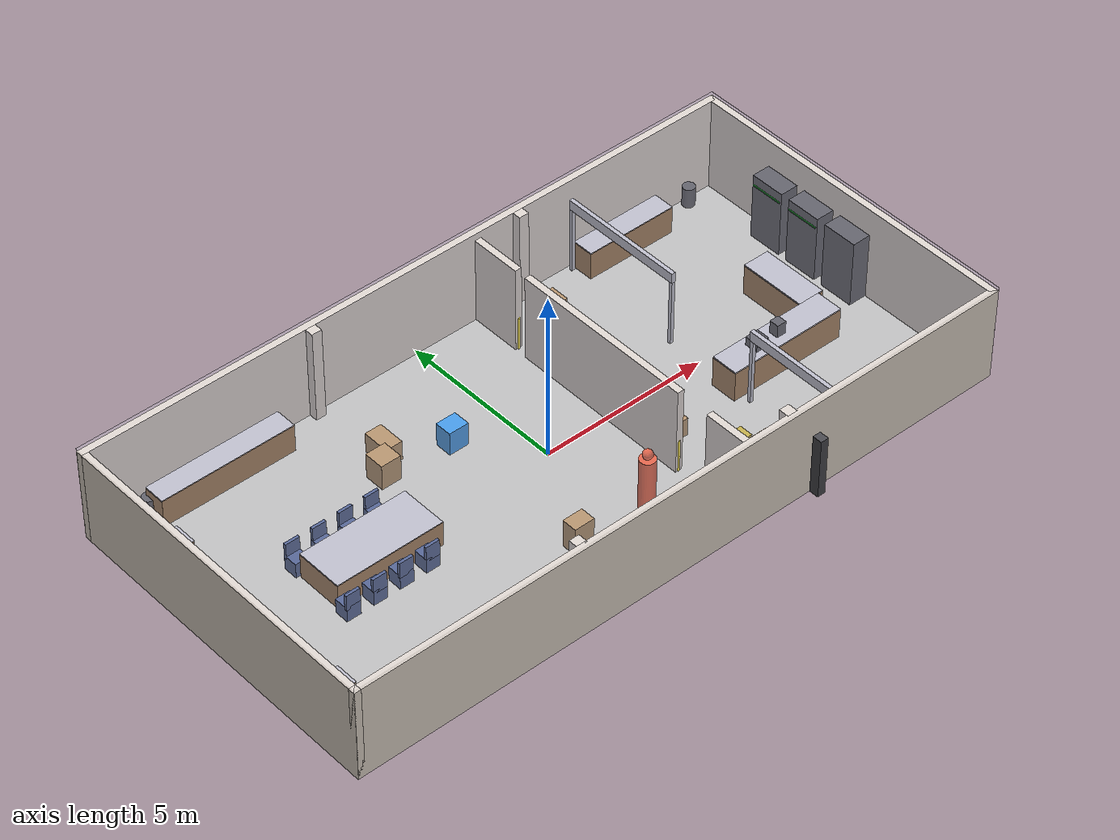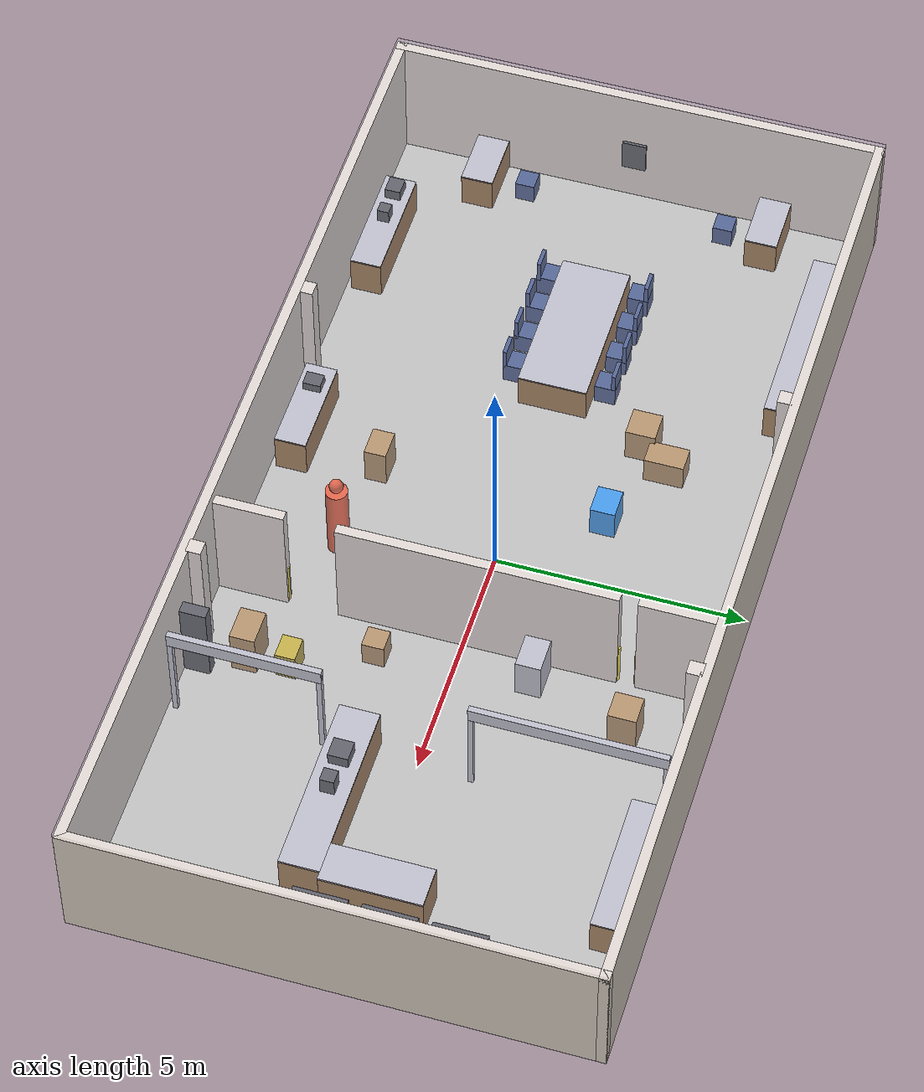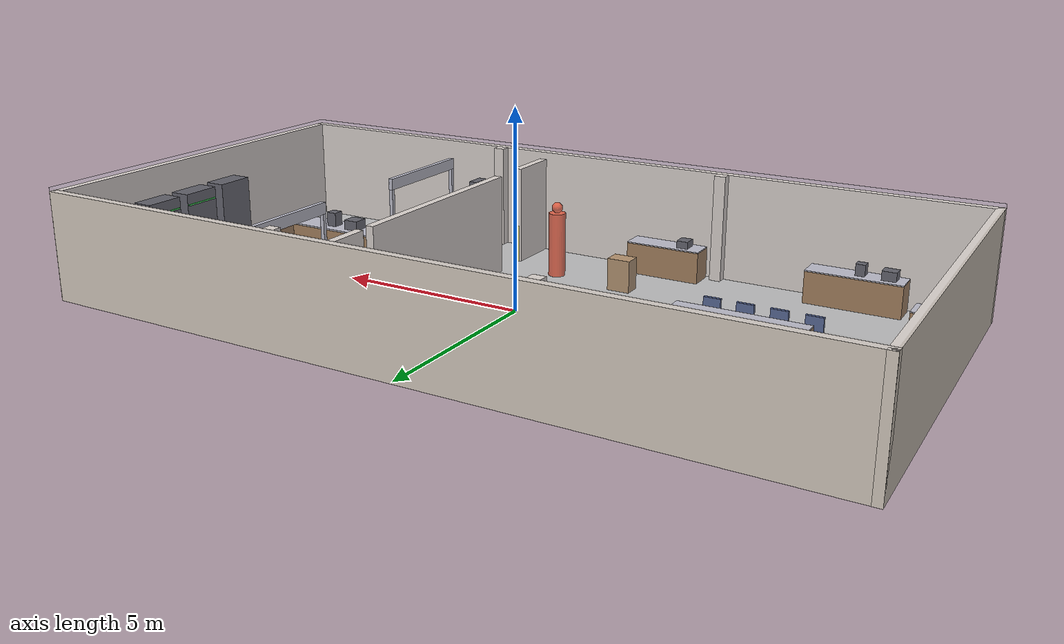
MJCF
<mujoco model="lab_env">

  <statistic center="0 0 1.2" extent="14"/>

  <visual>
    <headlight diffuse="0.7 0.7 0.7" ambient="0.35 0.35 0.35" specular="0.1 0.1 0.1"/>
    <rgba haze="0.08 0.12 0.18 1"/>
    <global azimuth="130" elevation="-22"/>
  </visual>

  <asset>
    <!-- 天空盒 -->
    <texture name="skybox" type="skybox" builtin="gradient"
             rgb1="0.25 0.35 0.45" rgb2="0.03 0.03 0.08"
             width="800" height="800"/>
    <!-- 地面纹理：灰白方格（仿瓷砖） -->
    <texture type="2d" name="floor_tex" builtin="checker" mark="edge"
             rgb1="0.80 0.80 0.78" rgb2="0.65 0.65 0.63"
             markrgb="0.92 0.92 0.92" width="512" height="512"/>
    <!-- 墙面纹理：浅米色 -->
    <texture type="2d" name="wall_tex" builtin="flat"
             rgb1="0.88 0.84 0.79" width="64" height="64"/>
    <!-- 木色桌面纹理 -->
    <texture type="2d" name="wood_tex" builtin="flat"
             rgb1="0.60 0.42 0.22" width="64" height="64"/>

    <material name="floor"  texture="floor_tex" texuniform="true" texrepeat="10 5" reflectance="0.18"/>
    <material name="wall"   texture="wall_tex"  reflectance="0.06"/>
    <material name="wood"   texture="wood_tex"  reflectance="0.08"/>
    <!-- 金属台面 -->
    <material name="metal"  rgba="0.72 0.72 0.76 1" reflectance="0.45"/>
    <!-- 玻璃：半透明蓝色，高反射 -->
    <material name="glass"  rgba="0.55 0.82 0.95 0.22" reflectance="0.65"/>
    <!-- 椅子：深蓝灰布面 -->
    <material name="chair"  rgba="0.22 0.30 0.50 1"   reflectance="0.04"/>
    <!-- 设备/机柜：深灰 -->
    <material name="equip"  rgba="0.28 0.28 0.30 1"   reflectance="0.25"/>
    <!-- 纸箱：浅棕 -->
    <material name="carton" rgba="0.68 0.52 0.32 1"   reflectance="0.04"/>
    <!-- 通道标识柱：黄黑警示 -->
    <material name="warning" rgba="0.95 0.85 0.10 1"  reflectance="0.10"/>
  </asset>

  <worldbody>

    <!-- ================================================================
         照明  (顶灯 + 辅助灯)
    ================================================================ -->
    <light name="lamp_w1" pos="-7.5  0 5.5" dir="0 0 -1"
           diffuse="0.75 0.75 0.75" specular="0.2 0.2 0.2"
           directional="false" cutoff="55"/>
    <light name="lamp_c"  pos=" 0.0  0 5.5" dir="0 0 -1"
           diffuse="0.75 0.75 0.75" specular="0.2 0.2 0.2"
           directional="false" cutoff="55"/>
    <light name="lamp_e1" pos=" 5.5  2 5.5" dir="0 0 -1"
           diffuse="0.75 0.75 0.75" specular="0.2 0.2 0.2"
           directional="false" cutoff="55"/>
    <light name="lamp_e2" pos=" 5.5 -2 5.5" dir="0 0 -1"
           diffuse="0.70 0.70 0.70" specular="0.15 0.15 0.15"
           directional="false" cutoff="50"/>
    <!-- 环境补光 -->
    <light name="fill" pos="0 0 8" dir="0 0 -1"
           diffuse="0.25 0.25 0.25" directional="true"/>

    <!-- ================================================================
         地面  (20m × 10m 无限平面)
    ================================================================ -->
    <geom name="floor" type="plane" size="10 5 0.1"
          material="floor" conaffinity="7" condim="3" friction="1"/>

    <!-- ================================================================
         外墙  壁厚 0.2m, 高 2.8m (half_z=1.4)
    ================================================================ -->
    <!-- 西墙 x=-10 -->
    <geom name="wall_west"  type="box" size="0.1 5.1 1.4"
          pos="-10 0 1.4"  material="wall" conaffinity="7"/>
    <!-- 东墙 x=+10 -->
    <geom name="wall_east"  type="box" size="0.1 5.1 1.4"
          pos=" 10 0 1.4"  material="wall" conaffinity="7"/>
    <!-- 南墙 y=-5 -->
    <geom name="wall_south" type="box" size="10.1 0.1 1.4"
          pos="0 -5 1.4"   material="wall" conaffinity="7"/>
    <!-- 北墙 y=+5 -->
    <geom name="wall_north" type="box" size="10.1 0.1 1.4"
          pos="0  5 1.4"   material="wall" conaffinity="7"/>

    <!-- 天花板 (conaffinity=0 不阻挡传感器外的碰撞，仅供LiDAR Z轴参考) -->
    <geom name="ceiling" type="box" size="10.1 5.1 0.05"
          pos="0 0 2.85" material="wall" conaffinity="0" rgba="0.8 0.8 0.9 0.1"/>

    <!-- 段1: Y= -5.0 ~ -3.5  中心 Y=-4.25  half=0.75 -->
    <geom name="par_s1" type="box" size="0.1 0.75 1.3"
          pos="2 -4.25 1.3" material="wall" conaffinity="7"/>
    <!-- 段2: Y= -2.5 ~ +3.025 中心 Y=+0.2625 half=2.7625 -->
    <geom name="par_s2" type="box" size="0.1 2.7625 1.3"
          pos="2 0.2625 1.3" material="wall" conaffinity="7"/>
    <!-- 段3: Y=+3.375 ~ +5.0  中心 Y=+4.1875 half=0.8125 -->
    <geom name="par_s3" type="box" size="0.1 0.8125 1.3"
          pos="2 4.1875 1.3" material="wall" conaffinity="7"/>

    <!-- 通道A 两侧警示柱 (黄色标识) -->
    <geom name="marker_A1" type="cylinder" size="0.04 0.5"
          pos="2 -3.52 0.5" material="warning" conaffinity="7"/>
    <geom name="marker_A2" type="cylinder" size="0.04 0.5"
          pos="2 -2.48 0.5" material="warning" conaffinity="7"/>
    <!-- 通道B 两侧警示柱 -->
    <geom name="marker_B1" type="cylinder" size="0.04 0.5"
          pos="2 3.02 0.5"  material="warning" conaffinity="7"/>
    <geom name="marker_B2" type="cylinder" size="0.04 0.5"
          pos="2 3.38 0.5"  material="warning" conaffinity="7"/>

    <!-- 玻璃段1: Y= +1.0 ~ +4.8 -->
    <geom name="glass1" type="box" size="0.04 1.9 1.0"
          pos="5 2.9 1.0" material="glass" conaffinity="7" condim="3"/>
    <!-- 玻璃段1 上方实体横梁 -->
    <geom name="glass1_beam" type="box" size="0.06 1.9 0.15"
          pos="5 2.9 2.15" material="metal" conaffinity="7"/>
    <!-- 玻璃段2: Y= -4.8 ~ -1.8 -->
    <geom name="glass2" type="box" size="0.04 1.5 1.0"
          pos="5 -3.3 1.0" material="glass" conaffinity="7" condim="3"/>
    <!-- 玻璃段2 上方横梁 -->
    <geom name="glass2_beam" type="box" size="0.06 1.5 0.15"
          pos="5 -3.3 2.15" material="metal" conaffinity="7"/>
    <!-- 玻璃段竖向边框 (铝合金框) -->
    <geom name="glass1_frameL" type="box" size="0.05 0.05 1.1"
          pos="5 1.05 1.1" material="metal" conaffinity="7"/>
    <geom name="glass1_frameR" type="box" size="0.05 0.05 1.1"
          pos="5 4.75 1.1" material="metal" conaffinity="7"/>
    <geom name="glass2_frameL" type="box" size="0.05 0.05 1.1"
          pos="5 -4.75 1.1" material="metal" conaffinity="7"/>
    <geom name="glass2_frameR" type="box" size="0.05 0.05 1.1"
          pos="5 -1.85 1.1" material="metal" conaffinity="7"/>

    <!-- 工作台W1: 2.4m 长, 位于西南 x=-7 -->
    <geom name="wbench1"     type="box" size="1.2 0.32 0.41"
          pos="-7   -4.47 0.41" material="wood" conaffinity="7"/>
    <geom name="wbench1_top" type="box" size="1.2 0.32 0.015"
          pos="-7   -4.47 0.835" material="metal" conaffinity="7"/>
    <!-- 工作台W2: 2.0m 长, x=-2 -->
    <geom name="wbench2"     type="box" size="1.0 0.32 0.41"
          pos="-2   -4.47 0.41" material="wood" conaffinity="7"/>
    <geom name="wbench2_top" type="box" size="1.0 0.32 0.015"
          pos="-2   -4.47 0.835" material="metal" conaffinity="7"/>

    <geom name="conf_table" type="box" size="1.6 0.70 0.37"
          pos="-5.5 0 0.37"  material="wood"  conaffinity="7"/>
    <geom name="conf_top"   type="box" size="1.6 0.70 0.015"
          pos="-5.5 0 0.755" material="metal" conaffinity="7"/>
    <!-- 椅子 (南侧4把) -->
    <geom name="cs1" type="box" size="0.21 0.21 0.22" pos="-7.0 -0.95 0.22" material="chair" conaffinity="7"/>
    <geom name="cs2" type="box" size="0.21 0.21 0.22" pos="-6.2 -0.95 0.22" material="chair" conaffinity="7"/>
    <geom name="cs3" type="box" size="0.21 0.21 0.22" pos="-5.4 -0.95 0.22" material="chair" conaffinity="7"/>
    <geom name="cs4" type="box" size="0.21 0.21 0.22" pos="-4.6 -0.95 0.22" material="chair" conaffinity="7"/>
    <!-- 椅子 (北侧4把) -->
    <geom name="cn1" type="box" size="0.21 0.21 0.22" pos="-7.0  0.95 0.22" material="chair" conaffinity="7"/>
    <geom name="cn2" type="box" size="0.21 0.21 0.22" pos="-6.2  0.95 0.22" material="chair" conaffinity="7"/>
    <geom name="cn3" type="box" size="0.21 0.21 0.22" pos="-5.4  0.95 0.22" material="chair" conaffinity="7"/>
    <geom name="cn4" type="box" size="0.21 0.21 0.22" pos="-4.6  0.95 0.22" material="chair" conaffinity="7"/>
    <!-- 椅背 (薄板) -->
    <geom name="cb_s1" type="box" size="0.21 0.04 0.24" pos="-7.0 -1.12 0.60" material="chair" conaffinity="7"/>
    <geom name="cb_s2" type="box" size="0.21 0.04 0.24" pos="-6.2 -1.12 0.60" material="chair" conaffinity="7"/>
    <geom name="cb_s3" type="box" size="0.21 0.04 0.24" pos="-5.4 -1.12 0.60" material="chair" conaffinity="7"/>
    <geom name="cb_s4" type="box" size="0.21 0.04 0.24" pos="-4.6 -1.12 0.60" material="chair" conaffinity="7"/>
    <geom name="cb_n1" type="box" size="0.21 0.04 0.24" pos="-7.0  1.12 0.60" material="chair" conaffinity="7"/>
    <geom name="cb_n2" type="box" size="0.21 0.04 0.24" pos="-6.2  1.12 0.60" material="chair" conaffinity="7"/>
    <geom name="cb_n3" type="box" size="0.21 0.04 0.24" pos="-5.4  1.12 0.60" material="chair" conaffinity="7"/>
    <geom name="cb_n4" type="box" size="0.21 0.04 0.24" pos="-4.6  1.12 0.60" material="chair" conaffinity="7"/>

    <!-- ================================================================
         西区 ── 独立办公桌 (贴西墙)
    ================================================================ -->
    <!-- 办公桌D1: x=-9.3, y=+3.0 -->
    <geom name="desk1"  type="box" size="0.62 0.33 0.37" pos="-9.3  3.0 0.37" material="wood" conaffinity="7"/>
    <geom name="dsk1_t" type="box" size="0.62 0.33 0.015" pos="-9.3  3.0 0.755" material="metal" conaffinity="7"/>
    <geom name="dsk1_c" type="box" size="0.20 0.20 0.22"  pos="-9.3  2.1 0.22"  material="chair" conaffinity="7"/>
    <!-- 办公桌D2: x=-9.3, y=-3.0 -->
    <geom name="desk2"  type="box" size="0.62 0.33 0.37" pos="-9.3 -3.0 0.37" material="wood" conaffinity="7"/>
    <geom name="dsk2_t" type="box" size="0.62 0.33 0.015" pos="-9.3 -3.0 0.755" material="metal" conaffinity="7"/>
    <geom name="dsk2_c" type="box" size="0.20 0.20 0.22"  pos="-9.3 -2.1 0.22"  material="chair" conaffinity="7"/>

    <!-- ================================================================
         西区 ── 工作台W3 (贴北墙)
    ================================================================ -->
    <geom name="wbench3"     type="box" size="2.0 0.32 0.41"
          pos="-6.5 4.47 0.41"  material="wood" conaffinity="7"/>
    <geom name="wbench3_top" type="box" size="2.0 0.32 0.015"
          pos="-6.5 4.47 0.835" material="metal" conaffinity="7"/>

    <!-- ================================================================
         东区 ── 实验台 (L 形布局, 高 0.90m 仿洁净台)
    ================================================================ -->
    <!-- 横向台: 3.6m × 0.8m -->
    <geom name="lab1"     type="box" size="1.8 0.40 0.45" pos="6.5 -1.2 0.45" material="wood"  conaffinity="7"/>
    <geom name="lab1_top" type="box" size="1.8 0.40 0.02" pos="6.5 -1.2 0.92" material="metal" conaffinity="7"/>
    <!-- 纵向台: 0.8m × 2.0m (L形转角) -->
    <geom name="lab2"     type="box" size="0.40 1.0 0.45" pos="8.05 0.2 0.45" material="wood"  conaffinity="7"/>
    <geom name="lab2_top" type="box" size="0.40 1.0 0.02" pos="8.05 0.2 0.92" material="metal" conaffinity="7"/>

    <!-- ================================================================
         东区 ── 服务器/设备机柜 (贴东墙)  高 2.0m
    ================================================================ -->
    <geom name="rack1" type="box" size="0.30 0.52 1.0" pos="9.65  2.2 1.0" material="equip" conaffinity="7"/>
    <geom name="rack2" type="box" size="0.30 0.52 1.0" pos="9.65  0.9 1.0" material="equip" conaffinity="7"/>
    <geom name="rack3" type="box" size="0.30 0.52 1.0" pos="9.65 -0.4 1.0" material="equip" conaffinity="7"/>
    <!-- 机柜指示灯条 (装饰性, 绿色薄片) -->
    <geom name="rack1_led" type="box" size="0.01 0.48 0.02" pos="9.34 2.2 1.7" rgba="0.1 0.9 0.2 1" conaffinity="0"/>
    <geom name="rack2_led" type="box" size="0.01 0.48 0.02" pos="9.34 0.9 1.7" rgba="0.1 0.9 0.2 1" conaffinity="0"/>

    <!-- ================================================================
         东区 ── 工作台E1 (贴北墙)
    ================================================================ -->
    <geom name="wbench_e1"     type="box" size="1.4 0.32 0.41"
          pos="6.5 4.47 0.41"  material="wood" conaffinity="7"/>
    <geom name="wbench_e1_top" type="box" size="1.4 0.32 0.015"
          pos="6.5 4.47 0.835" material="metal" conaffinity="7"/>

    <!-- ================================================================
         台面上摆放的仪器设备 (小型箱体)
    ================================================================ -->
    <!-- W1台面: 示波器 + 电源 -->
    <geom name="inst1" type="box" size="0.18 0.16 0.12" pos="-7.8 -4.47 0.97" material="equip" conaffinity="7"/>
    <geom name="inst2" type="box" size="0.12 0.12 0.15" pos="-7.1 -4.47 1.00" material="equip" conaffinity="7"/>
    <!-- W2台面 -->
    <geom name="inst3" type="box" size="0.15 0.18 0.10" pos="-2.5 -4.47 0.94" material="equip" conaffinity="7"/>
    <!-- 实验台面 -->
    <geom name="inst4" type="box" size="0.20 0.20 0.14" pos="5.8 -1.2 1.06"  material="equip" conaffinity="7"/>
    <geom name="inst5" type="box" size="0.14 0.14 0.20" pos="6.5 -1.2 1.12"  material="equip" conaffinity="7"/>

    <!-- ================================================================
         地面散落障碍物 (纸箱/设备箱)
    ================================================================ -->
    <!-- 西区中部 -->
    <geom name="cbox1" type="box" size="0.30 0.30 0.38" pos="-3.5  2.0 0.38" material="carton" conaffinity="7"/>
    <geom name="cbox2" type="box" size="0.25 0.40 0.30" pos="-3.0  2.6 0.30" material="carton" conaffinity="7"/>
    <!-- 通道A 西侧 (阻碍路径但仍可绕过) -->
    <geom name="cbox3" type="box" size="0.30 0.22 0.42" pos="-1.5 -2.8 0.42" material="carton" conaffinity="7"/>
    <!-- 东区 -->
    <geom name="cbox4" type="box" size="0.35 0.25 0.50" pos="3.5 -3.8 0.50" material="carton" conaffinity="7"/>
    <geom name="cbox5" type="box" size="0.22 0.22 0.28" pos="2.8 -1.5 0.28" material="carton" conaffinity="7"/>
    <!-- 通道B 东侧 (进一步加强不可通行感) -->
    <geom name="cbox6" type="box" size="0.28 0.28 0.45" pos="3.2  3.5 0.45" material="carton" conaffinity="7"/>

    <!-- ================================================================
         结构柱 (模拟建筑承重柱, 截面 0.3m×0.3m)
    ================================================================ -->
    <geom name="col1" type="box" size="0.15 0.15 1.4" pos="-3.3  4.8 1.4" material="wall" conaffinity="7"/>
    <geom name="col2" type="box" size="0.15 0.15 1.4" pos="-3.3 -4.8 1.4" material="wall" conaffinity="7"/>
    <geom name="col3" type="box" size="0.15 0.15 1.4" pos=" 3.3  4.8 1.4" material="wall" conaffinity="7"/>
    <geom name="col4" type="box" size="0.15 0.15 1.4" pos=" 3.3 -4.8 1.4" material="wall" conaffinity="7"/>

    <!-- ================================================================
         其他真实测试要素
    ================================================================ -->
    <!-- 消防栓箱 (贴西墙) -->
    <geom name="fire_box" type="box" size="0.08 0.25 0.35" pos="-9.92 0 1.2" material="equip" conaffinity="7"/>
    <!-- 配电柜 (贴南墙, 东区) -->
    <geom name="elec_panel" type="box" size="0.12 0.50 0.90" pos="4.0 -4.88 0.90" material="equip" conaffinity="7"/>
    <!-- 移动推车 (东区过道) -->
    <geom name="cart" type="box" size="0.35 0.25 0.45" pos="2.5 1.5 0.45" material="metal" conaffinity="7"/>
    <!-- 废料桶 -->
    <geom name="bin1" type="cylinder" size="0.18 0.30" pos="-8.5  4.7 0.30" material="equip" conaffinity="7"/>
    <geom name="bin2" type="cylinder" size="0.18 0.30" pos=" 9.0  4.7 0.30" material="equip" conaffinity="7"/>

    <!-- 动态障碍1: 模拟行人  (通道A 西侧入口前方)
         位置: X=0.5, Y=-3.0 — 静态地图中此处为开阔走廊           -->
    <geom name="dyn_person_body" type="cylinder" size="0.22 0.85"
          pos="0.5 -3.0 0.85"
          rgba="0.90 0.30 0.15 1"
          conaffinity="7" condim="3"/>
    <geom name="dyn_person_head" type="sphere" size="0.14"
          pos="0.5 -3.0 1.84"
          rgba="0.90 0.30 0.15 1"
          conaffinity="7" condim="3"/>

    <!-- 动态障碍2: 模拟设备箱/推车  (西区主导航路径中段)
         位置: X=-1.5, Y=1.8 — 静态地图中此处为开阔地带           -->
    <geom name="dyn_box_geom" type="box" size="0.30 0.25 0.35"
          pos="-1.5 1.8 0.35"
          rgba="0.15 0.55 0.90 1"
          conaffinity="7" condim="3"/>

    <!-- 动态障碍3: 模拟临时堆放纸箱  (通道A 东侧出口)
         位置: X=3.5, Y=-3.0 — 机器人穿过通道A后正面遇到           -->
    <geom name="dyn_crate_geom" type="box" size="0.25 0.20 0.35"
          pos="3.5 -3.0 0.25"
          rgba="0.75 0.65 0.15 1"
          conaffinity="7" condim="3"/>

  </worldbody>
</mujoco>
